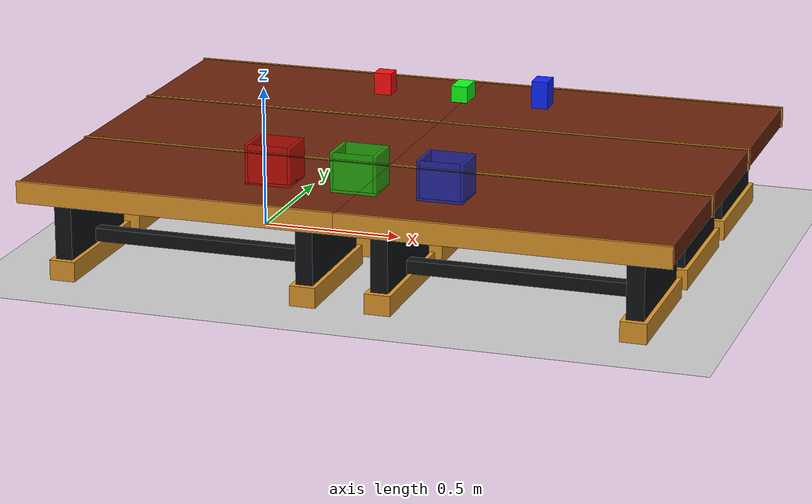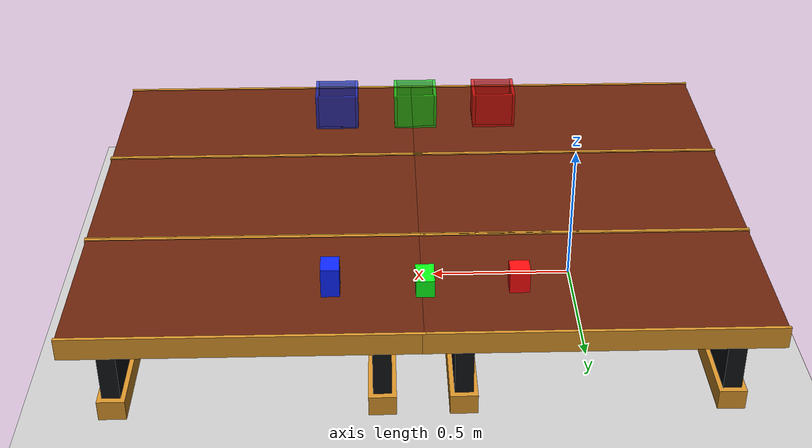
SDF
<sdf version='1.9'>
  <world name='pick_and_place_world'>
    <gravity>0 0 -9.8</gravity>
    <magnetic_field>6e-06 2.3e-05 -4.2e-05</magnetic_field>
    <atmosphere type='adiabatic'/>
    <physics type='ode'>
      <max_step_size>0.001</max_step_size>
      <real_time_factor>1</real_time_factor>
      <real_time_update_rate>1000</real_time_update_rate>
    </physics>
    <scene>
      <ambient>0.4 0.4 0.4 1</ambient>
      <background>0.7 0.7 0.7 1</background>
      <shadows>true</shadows>
    </scene>

  <!-- ================= RED BOX ================= -->
  <model name="red_box">
    <!-- Tabletop z=0.35 plus half the box height (0.04). -->
    <pose>0.25 0.6 0.39 0 0 0</pose>
    <static>false</static>
    <link name="red_link">
      <inertial>
        <mass>0.10</mass>
        <inertia>
          <ixx>0.000089</ixx><iyy>0.000089</iyy><izz>0.000070</izz>
        </inertia>
      </inertial>
      <collision name="red_collision">
        <geometry>
          <box>
            <!-- 65 mm footprint gives the 80 mm gripper enough clearance. -->
            <size>0.065 0.065 0.08</size>
          </box>
        </geometry>
      </collision>
      <visual name="red_visual">
        <geometry>
          <box>
            <size>0.065 0.065 0.08</size>
          </box>
        </geometry>
        <material>
          <ambient>1 0.05 0.05 1</ambient>
          <diffuse>1 0.05 0.05 1</diffuse>
        </material>
      </visual>
    </link>
  </model>

  <!-- ================= GREEN BOX ================= -->
  <model name="green_box">
    <!-- Tabletop z=0.35 plus half the box height (0.03). -->
    <!-- Rotate 90 degrees about Z so the 60 mm side faces the gripper jaws. -->
    <pose>0.55 0.6 0.38 0 0 1.5708</pose>
    <static>false</static>
    <link name="green_link">
      <inertial>
        <mass>0.12</mass>
        <inertia>
          <ixx>0.00007</ixx><iyy>0.00012</iyy><izz>0.00013</izz>
        </inertia>
      </inertial>
      <collision name="green_collision">
        <geometry>
          <box>
            <size>0.10 0.06 0.06</size>
          </box>
        </geometry>
      </collision>
      <visual name="green_visual">
        <geometry>
          <box>
            <size>0.10 0.06 0.06</size>
          </box>
        </geometry>
        <material>
          <ambient>0.05 1 0.10 1</ambient>
          <diffuse>0.05 1 0.10 1</diffuse>
        </material>
      </visual>
    </link>
  </model>

  <!-- ================= BLUE BOX ================= -->
  <model name="blue_box">
    <!-- Tabletop z=0.35 plus half the box height (0.05). -->
    <pose>0.85 0.6 0.40 0 0 0</pose>
    <static>false</static>
    <link name="blue_link">
      <inertial>
        <mass>0.08</mass>
        <inertia>
          <ixx>0.00011</ixx><iyy>0.00009</iyy><izz>0.00007</izz>
        </inertia>
      </inertial>
      <collision name="blue_collision">
        <geometry>
          <box>
            <size>0.06 0.08 0.10</size>
          </box>
        </geometry>
      </collision>
      <visual name="blue_visual">
        <geometry>
          <box>
            <size>0.06 0.08 0.10</size>
          </box>
        </geometry>
        <material>
          <ambient>0.05 0.15 1 1</ambient>
          <diffuse>0.05 0.15 1 1</diffuse>
        </material>
      </visual>
    </link>
  </model>

    <!-- Open-top destination containers on the rear table, aligned by box color. -->
    <include>
      <uri>model://sorting_container</uri>
      <name>red_container</name>
      <pose>0.25 -0.56 0 0 0 0</pose>
    </include>
    <include>
      <uri>model://sorting_container_green</uri>
      <name>green_container</name>
      <pose>0.55 -0.56 0 0 0 0</pose>
    </include>
    <include>
      <uri>model://sorting_container_blue</uri>
      <name>blue_container</name>
      <pose>0.85 -0.56 0 0 0 0</pose>
    </include>

    <!-- Six gap-free designer tables in a 3-row x 2-column layout. -->
    <!-- Rear row (behind the Panda, replacing the trash can). -->
    <include>
      <uri>model://fancy_table</uri>
      <name>fancy_table_5</name>
      <pose>0 -0.56 0 0 0 0</pose>
    </include>
    <include>
      <uri>model://fancy_table</uri>
      <name>fancy_table_6</name>
      <pose>1.12 -0.56 0 0 0 0</pose>
    </include>

    <!-- Middle row containing the Panda base. -->
    <include>
      <uri>model://fancy_table</uri>
      <name>fancy_table_1</name>
      <pose>0 0 0 0 0 0</pose>
    </include>
    <include>
      <uri>model://fancy_table</uri>
      <name>fancy_table_2</name>
      <pose>1.12 0 0 0 0 0</pose>
    </include>

    <!-- Front row containing the colored boxes. -->
    <include>
      <uri>model://fancy_table</uri>
      <name>fancy_table_3</name>
      <pose>1.12 0.56 0 0 0 0</pose>
    </include>
    <include>
      <uri>model://fancy_table</uri>
      <name>fancy_table_4</name>
      <pose>0 0.56 0 0 0 0</pose>
    </include>
    <model name='ground_plane'>
      <static>true</static>
      <link name='link'>
        <collision name='collision'>
          <geometry>
            <plane>
              <normal>0 0 1</normal>
              <size>1 1</size>
            </plane>
          </geometry>
          <surface>
            <friction>
              <ode/>
            </friction>
            <bounce/>
            <contact/>
          </surface>
        </collision>
        <visual name='visual'>
          <geometry>
            <plane>
              <normal>0 0 1</normal>
              <size>100 100</size>
            </plane>
          </geometry>
          <material>
            <ambient>0.8 0.8 0.8 1</ambient>
            <diffuse>0.8 0.8 0.8 1</diffuse>
            <specular>0.8 0.8 0.8 1</specular>
          </material>
        </visual>
        <pose>0 0 0 0 -0 0</pose>
        <inertial>
          <pose>0 0 0 0 -0 0</pose>
          <mass>1</mass>
          <inertia>
            <ixx>1</ixx>
            <ixy>0</ixy>
            <ixz>0</ixz>
            <iyy>1</iyy>
            <iyz>0</iyz>
            <izz>1</izz>
          </inertia>
        </inertial>
        <enable_wind>false</enable_wind>
      </link>
      <pose>0 0 0 0 -0 0</pose>
      <self_collide>false</self_collide>
    </model>
    <light name='sun' type='directional'>
      <pose>0 0 10 0 -0 0</pose>
      <cast_shadows>true</cast_shadows>
      <intensity>1</intensity>
      <direction>-0.5 0.1 -0.9</direction>
      <diffuse>0.8 0.8 0.8 1</diffuse>
      <specular>0.2 0.2 0.2 1</specular>
      <attenuation>
        <range>1000</range>
        <linear>0.01</linear>
        <constant>0.90000000000000002</constant>
        <quadratic>0.001</quadratic>
      </attenuation>
      <spot>
        <inner_angle>0</inner_angle>
        <outer_angle>0</outer_angle>
        <falloff>0</falloff>
      </spot>
    </light>
  </world>
</sdf>

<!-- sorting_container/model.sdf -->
<sdf version="1.9">
  <model name="sorting_container_red">
    <static>true</static>
    <link name="container">
      <!--
        Interior: 0.14 x 0.12 x 0.125 m.
        Exterior: 0.16 x 0.14 x 0.135 m.
        The bottom rests on the z=0.35 tabletop when the model pose is z=0.
      -->
      <collision name="bottom_collision">
        <pose>0 0 0.355 0 0 0</pose>
        <geometry><box><size>0.16 0.14 0.01</size></box></geometry>
      </collision>
      <collision name="left_wall_collision">
        <pose>-0.075 0 0.42 0 0 0</pose>
        <geometry><box><size>0.01 0.14 0.13</size></box></geometry>
      </collision>
      <collision name="right_wall_collision">
        <pose>0.075 0 0.42 0 0 0</pose>
        <geometry><box><size>0.01 0.14 0.13</size></box></geometry>
      </collision>
      <collision name="front_wall_collision">
        <pose>0 -0.065 0.42 0 0 0</pose>
        <geometry><box><size>0.14 0.01 0.13</size></box></geometry>
      </collision>
      <collision name="back_wall_collision">
        <pose>0 0.065 0.42 0 0 0</pose>
        <geometry><box><size>0.14 0.01 0.13</size></box></geometry>
      </collision>

      <!-- Red plastic with 30 percent visual transparency. -->
      <visual name="bottom_visual">
        <pose>0 0 0.355 0 0 0</pose>
        <geometry><box><size>0.16 0.14 0.01</size></box></geometry>
        <transparency>0.30</transparency>
        <material>
          <ambient>0.35 0.02 0.02 0.70</ambient>
          <diffuse>0.90 0.05 0.05 0.70</diffuse>
          <specular>0.45 0.18 0.18 0.70</specular>
        </material>
      </visual>
      <visual name="left_wall_visual">
        <pose>-0.075 0 0.42 0 0 0</pose>
        <geometry><box><size>0.01 0.14 0.13</size></box></geometry>
        <transparency>0.30</transparency>
        <material>
          <ambient>0.35 0.02 0.02 0.70</ambient>
          <diffuse>0.90 0.05 0.05 0.70</diffuse>
          <specular>0.45 0.18 0.18 0.70</specular>
        </material>
      </visual>
      <visual name="right_wall_visual">
        <pose>0.075 0 0.42 0 0 0</pose>
        <geometry><box><size>0.01 0.14 0.13</size></box></geometry>
        <transparency>0.30</transparency>
        <material>
          <ambient>0.35 0.02 0.02 0.70</ambient>
          <diffuse>0.90 0.05 0.05 0.70</diffuse>
          <specular>0.45 0.18 0.18 0.70</specular>
        </material>
      </visual>
      <visual name="front_wall_visual">
        <pose>0 -0.065 0.42 0 0 0</pose>
        <geometry><box><size>0.14 0.01 0.13</size></box></geometry>
        <transparency>0.30</transparency>
        <material>
          <ambient>0.35 0.02 0.02 0.70</ambient>
          <diffuse>0.90 0.05 0.05 0.70</diffuse>
          <specular>0.45 0.18 0.18 0.70</specular>
        </material>
      </visual>
      <visual name="back_wall_visual">
        <pose>0 0.065 0.42 0 0 0</pose>
        <geometry><box><size>0.14 0.01 0.13</size></box></geometry>
        <transparency>0.30</transparency>
        <material>
          <ambient>0.35 0.02 0.02 0.70</ambient>
          <diffuse>0.90 0.05 0.05 0.70</diffuse>
          <specular>0.45 0.18 0.18 0.70</specular>
        </material>
      </visual>
    </link>
  </model>
</sdf>

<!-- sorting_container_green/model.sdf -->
<sdf version="1.9">
  <model name="sorting_container_green">
    <static>true</static>
    <link name="container">
      <!--
        Interior: 0.14 x 0.12 x 0.125 m.
        Exterior: 0.16 x 0.14 x 0.135 m.
        The bottom rests on the z=0.35 tabletop when the model pose is z=0.
      -->
      <collision name="bottom_collision">
        <pose>0 0 0.355 0 0 0</pose>
        <geometry><box><size>0.16 0.14 0.01</size></box></geometry>
      </collision>
      <collision name="left_wall_collision">
        <pose>-0.075 0 0.42 0 0 0</pose>
        <geometry><box><size>0.01 0.14 0.13</size></box></geometry>
      </collision>
      <collision name="right_wall_collision">
        <pose>0.075 0 0.42 0 0 0</pose>
        <geometry><box><size>0.01 0.14 0.13</size></box></geometry>
      </collision>
      <collision name="front_wall_collision">
        <pose>0 -0.065 0.42 0 0 0</pose>
        <geometry><box><size>0.14 0.01 0.13</size></box></geometry>
      </collision>
      <collision name="back_wall_collision">
        <pose>0 0.065 0.42 0 0 0</pose>
        <geometry><box><size>0.14 0.01 0.13</size></box></geometry>
      </collision>

      <!-- Green plastic with 30 percent visual transparency. -->
      <visual name="bottom_visual">
        <pose>0 0 0.355 0 0 0</pose>
        <geometry><box><size>0.16 0.14 0.01</size></box></geometry>
        <transparency>0.30</transparency>
        <material>
          <ambient>0.02 0.35 0.04 0.70</ambient>
          <diffuse>0.05 0.90 0.10 0.70</diffuse>
          <specular>0.18 0.45 0.20 0.70</specular>
        </material>
      </visual>
      <visual name="left_wall_visual">
        <pose>-0.075 0 0.42 0 0 0</pose>
        <geometry><box><size>0.01 0.14 0.13</size></box></geometry>
        <transparency>0.30</transparency>
        <material>
          <ambient>0.02 0.35 0.04 0.70</ambient>
          <diffuse>0.05 0.90 0.10 0.70</diffuse>
          <specular>0.18 0.45 0.20 0.70</specular>
        </material>
      </visual>
      <visual name="right_wall_visual">
        <pose>0.075 0 0.42 0 0 0</pose>
        <geometry><box><size>0.01 0.14 0.13</size></box></geometry>
        <transparency>0.30</transparency>
        <material>
          <ambient>0.02 0.35 0.04 0.70</ambient>
          <diffuse>0.05 0.90 0.10 0.70</diffuse>
          <specular>0.18 0.45 0.20 0.70</specular>
        </material>
      </visual>
      <visual name="front_wall_visual">
        <pose>0 -0.065 0.42 0 0 0</pose>
        <geometry><box><size>0.14 0.01 0.13</size></box></geometry>
        <transparency>0.30</transparency>
        <material>
          <ambient>0.02 0.35 0.04 0.70</ambient>
          <diffuse>0.05 0.90 0.10 0.70</diffuse>
          <specular>0.18 0.45 0.20 0.70</specular>
        </material>
      </visual>
      <visual name="back_wall_visual">
        <pose>0 0.065 0.42 0 0 0</pose>
        <geometry><box><size>0.14 0.01 0.13</size></box></geometry>
        <transparency>0.30</transparency>
        <material>
          <ambient>0.02 0.35 0.04 0.70</ambient>
          <diffuse>0.05 0.90 0.10 0.70</diffuse>
          <specular>0.18 0.45 0.20 0.70</specular>
        </material>
      </visual>
    </link>
  </model>
</sdf>

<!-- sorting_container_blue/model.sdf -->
<sdf version="1.9">
  <model name="sorting_container_blue">
    <static>true</static>
    <link name="container">
      <!--
        Interior: 0.14 x 0.12 x 0.125 m.
        Exterior: 0.16 x 0.14 x 0.135 m.
        The bottom rests on the z=0.35 tabletop when the model pose is z=0.
      -->
      <collision name="bottom_collision">
        <pose>0 0 0.355 0 0 0</pose>
        <geometry><box><size>0.16 0.14 0.01</size></box></geometry>
      </collision>
      <collision name="left_wall_collision">
        <pose>-0.075 0 0.42 0 0 0</pose>
        <geometry><box><size>0.01 0.14 0.13</size></box></geometry>
      </collision>
      <collision name="right_wall_collision">
        <pose>0.075 0 0.42 0 0 0</pose>
        <geometry><box><size>0.01 0.14 0.13</size></box></geometry>
      </collision>
      <collision name="front_wall_collision">
        <pose>0 -0.065 0.42 0 0 0</pose>
        <geometry><box><size>0.14 0.01 0.13</size></box></geometry>
      </collision>
      <collision name="back_wall_collision">
        <pose>0 0.065 0.42 0 0 0</pose>
        <geometry><box><size>0.14 0.01 0.13</size></box></geometry>
      </collision>

      <!-- Blue plastic with 30 percent visual transparency. -->
      <visual name="bottom_visual">
        <pose>0 0 0.355 0 0 0</pose>
        <geometry><box><size>0.16 0.14 0.01</size></box></geometry>
        <transparency>0.30</transparency>
        <material>
          <ambient>0.02 0.08 0.35 0.70</ambient>
          <diffuse>0.05 0.20 0.90 0.70</diffuse>
          <specular>0.18 0.25 0.45 0.70</specular>
        </material>
      </visual>
      <visual name="left_wall_visual">
        <pose>-0.075 0 0.42 0 0 0</pose>
        <geometry><box><size>0.01 0.14 0.13</size></box></geometry>
        <transparency>0.30</transparency>
        <material>
          <ambient>0.02 0.08 0.35 0.70</ambient>
          <diffuse>0.05 0.20 0.90 0.70</diffuse>
          <specular>0.18 0.25 0.45 0.70</specular>
        </material>
      </visual>
      <visual name="right_wall_visual">
        <pose>0.075 0 0.42 0 0 0</pose>
        <geometry><box><size>0.01 0.14 0.13</size></box></geometry>
        <transparency>0.30</transparency>
        <material>
          <ambient>0.02 0.08 0.35 0.70</ambient>
          <diffuse>0.05 0.20 0.90 0.70</diffuse>
          <specular>0.18 0.25 0.45 0.70</specular>
        </material>
      </visual>
      <visual name="front_wall_visual">
        <pose>0 -0.065 0.42 0 0 0</pose>
        <geometry><box><size>0.14 0.01 0.13</size></box></geometry>
        <transparency>0.30</transparency>
        <material>
          <ambient>0.02 0.08 0.35 0.70</ambient>
          <diffuse>0.05 0.20 0.90 0.70</diffuse>
          <specular>0.18 0.25 0.45 0.70</specular>
        </material>
      </visual>
      <visual name="back_wall_visual">
        <pose>0 0.065 0.42 0 0 0</pose>
        <geometry><box><size>0.14 0.01 0.13</size></box></geometry>
        <transparency>0.30</transparency>
        <material>
          <ambient>0.02 0.08 0.35 0.70</ambient>
          <diffuse>0.05 0.20 0.90 0.70</diffuse>
          <specular>0.18 0.25 0.45 0.70</specular>
        </material>
      </visual>
    </link>
  </model>
</sdf>

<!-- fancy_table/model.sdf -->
<sdf version="1.9">
  <model name="fancy_table">
    <static>true</static>
    <link name="table">
      <!-- Simple collision shapes keep the table stable and inexpensive to simulate. -->
      <collision name="top_collision">
        <!-- Top surface is z=0.35, matching panda_link0 in arm.xacro. -->
        <pose>0 0 0.315 0 0 0</pose>
        <geometry><box><size>1.12 0.56 0.07</size></box></geometry>
      </collision>
      <collision name="left_leg_collision">
        <pose>-0.43 0 0.1525 0 0 0</pose>
        <geometry><box><size>0.06 0.44 0.305</size></box></geometry>
      </collision>
      <collision name="right_leg_collision">
        <pose>0.43 0 0.1525 0 0 0</pose>
        <geometry><box><size>0.06 0.44 0.305</size></box></geometry>
      </collision>

      <!-- Warm walnut top. -->
      <visual name="walnut_top">
        <pose>0 0 0.315 0 0 0</pose>
        <geometry><box><size>1.12 0.56 0.07</size></box></geometry>
        <material>
          <ambient>0.24 0.075 0.025 1</ambient>
          <diffuse>0.42 0.14 0.045 1</diffuse>
          <specular>0.22 0.16 0.10 1</specular>
        </material>
      </visual>

      <!-- Thin brass edge bands give the top a more finished appearance. -->
      <visual name="front_brass_trim">
        <pose>0 -0.283 0.315 0 0 0</pose>
        <geometry><box><size>1.13 0.012 0.075</size></box></geometry>
        <material>
          <ambient>0.55 0.32 0.07 1</ambient>
          <diffuse>0.85 0.58 0.16 1</diffuse>
          <specular>0.95 0.80 0.35 1</specular>
        </material>
      </visual>
      <visual name="back_brass_trim">
        <pose>0 0.283 0.315 0 0 0</pose>
        <geometry><box><size>1.13 0.012 0.075</size></box></geometry>
        <material>
          <ambient>0.55 0.32 0.07 1</ambient>
          <diffuse>0.85 0.58 0.16 1</diffuse>
          <specular>0.95 0.80 0.35 1</specular>
        </material>
      </visual>

      <!-- Matte-black steel pedestal legs and lower crossbar. -->
      <visual name="left_leg">
        <pose>-0.43 0 0.1525 0 0 0</pose>
        <geometry><box><size>0.06 0.44 0.305</size></box></geometry>
        <material>
          <ambient>0.025 0.03 0.035 1</ambient>
          <diffuse>0.055 0.065 0.075 1</diffuse>
          <specular>0.35 0.38 0.40 1</specular>
        </material>
      </visual>
      <visual name="right_leg">
        <pose>0.43 0 0.1525 0 0 0</pose>
        <geometry><box><size>0.06 0.44 0.305</size></box></geometry>
        <material>
          <ambient>0.025 0.03 0.035 1</ambient>
          <diffuse>0.055 0.065 0.075 1</diffuse>
          <specular>0.35 0.38 0.40 1</specular>
        </material>
      </visual>
      <visual name="lower_crossbar">
        <pose>0 0 0.10 0 0 0</pose>
        <geometry><box><size>0.86 0.045 0.045</size></box></geometry>
        <material>
          <ambient>0.025 0.03 0.035 1</ambient>
          <diffuse>0.055 0.065 0.075 1</diffuse>
          <specular>0.35 0.38 0.40 1</specular>
        </material>
      </visual>

      <!-- Brass feet echo the trim around the tabletop. -->
      <visual name="left_foot">
        <pose>-0.43 0 0.035 0 0 0</pose>
        <geometry><box><size>0.09 0.48 0.07</size></box></geometry>
        <material>
          <ambient>0.55 0.32 0.07 1</ambient>
          <diffuse>0.85 0.58 0.16 1</diffuse>
          <specular>0.95 0.80 0.35 1</specular>
        </material>
      </visual>
      <visual name="right_foot">
        <pose>0.43 0 0.035 0 0 0</pose>
        <geometry><box><size>0.09 0.48 0.07</size></box></geometry>
        <material>
          <ambient>0.55 0.32 0.07 1</ambient>
          <diffuse>0.85 0.58 0.16 1</diffuse>
          <specular>0.95 0.80 0.35 1</specular>
        </material>
      </visual>
    </link>
  </model>
</sdf>
